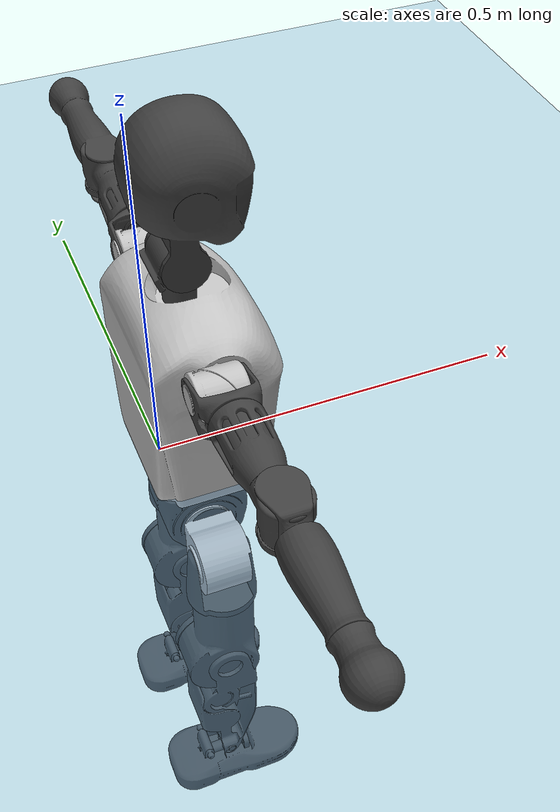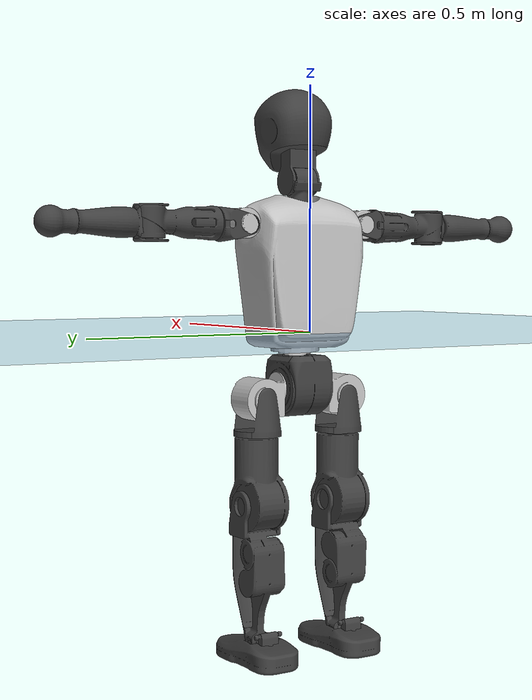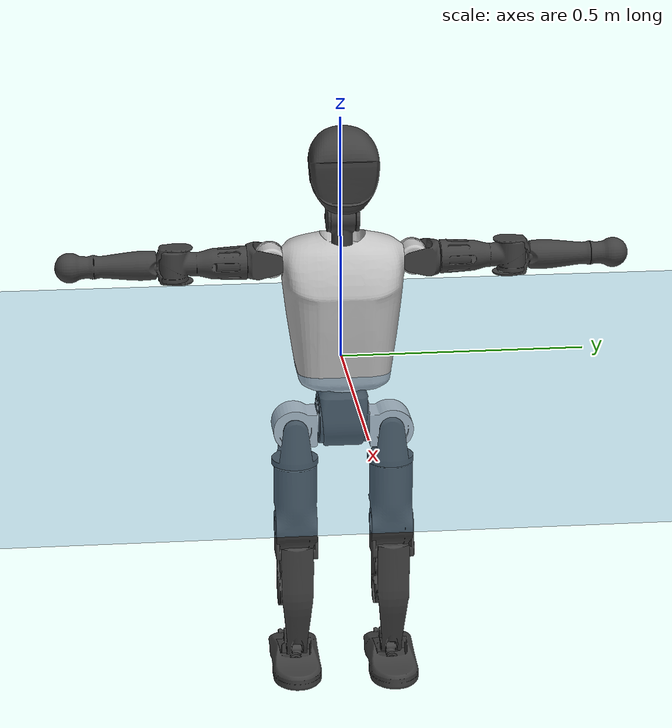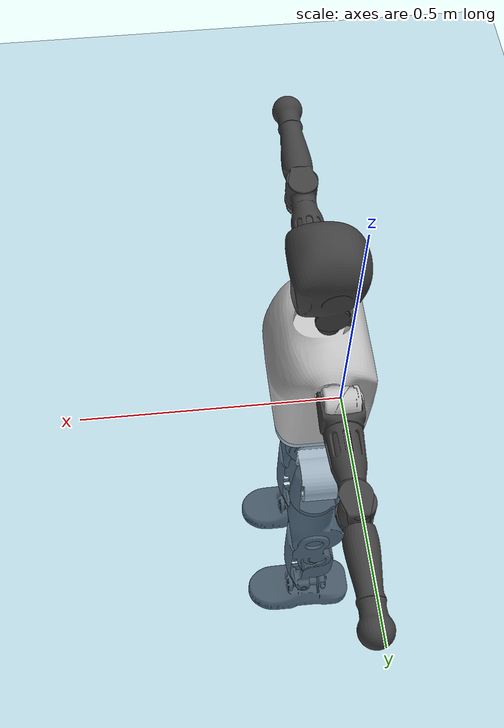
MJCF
<mujoco model="T1">
  <compiler angle="radian" assetdir="assets" balanceinertia="true" inertiafromgeom="false"/>

  <option timestep="0.005" density="1.2" viscosity="2e-05"/>

  <size nkey="1"/>

  <visual>
    <quality shadowsize="8192"/>
    <map shadowclip="0.5"/>
  </visual>

  <default>
    <default class="/">
      <joint armature="0.01" damping="0.01" frictionloss="0.1"/>
      <geom contype="0" conaffinity="0" group="1" solref="-1000 -80"/>
      <site size="0.01 0.005 0.005" group="5"/>
      <general forcelimited="true" biastype="affine" gainprm="25" biasprm="0 -25 -0.6"/>
      <default class="t1">
        <geom rgba="0.25 0.25 0.25 1"/>
        <default class="visual">
          <geom type="mesh" group="2"/>
        </default>
        <default class="collision">
          <geom group="3"/>
        </default>
        <default class="foot">
          <geom size="0.1115 0.05 0.015" type="box" condim="6" group="4" priority="1" solimp="0.015 1 0.015"/>
        </default>
        <default class="reward_collision_sphere">
          <geom group="5" rgba="1 0 0 1"/>
        </default>
      </default>
    </default>
  </default>

  <asset>
    <texture type="skybox" colorspace="auto" name="//unnamed_texture_0" builtin="gradient" rgb1="0.95 0.95 0.95" rgb2="0.95 0.95 0.95" width="100" height="600"/>
    <texture type="2d" colorspace="auto" name="texplane" builtin="checker" rgb1="0.345 0.575 0.748" rgb2="0.345 0.575 0.748" markrgb="1 1 1" width="512" height="512"/>
    <material name="MatPlane" class="/" texture="texplane" texuniform="true" texrepeat="2 2" specular="0.9"/>
    <mesh name="Trunk" class="/" file="Trunk.stl"/>
    <mesh name="H1" class="/" file="H1.stl"/>
    <mesh name="H2" class="/" file="H2.stl"/>
    <mesh name="AL1" class="/" file="AL1.stl"/>
    <mesh name="AL2" class="/" file="AL2.stl"/>
    <mesh name="AL3" class="/" file="AL3.stl"/>
    <mesh name="left_hand_link" class="/" file="left_hand_link.stl"/>
    <mesh name="AR1" class="/" file="AR1.stl"/>
    <mesh name="AR2" class="/" file="AR2.stl"/>
    <mesh name="AR3" class="/" file="AR3.stl"/>
    <mesh name="right_hand_link" class="/" file="right_hand_link.stl"/>
    <mesh name="Waist" class="/" file="Waist.stl"/>
    <mesh name="Hip_Pitch_Left" class="/" file="Hip_Pitch_Left.stl"/>
    <mesh name="Hip_Roll_Left" class="/" file="Hip_Roll_Left.stl"/>
    <mesh name="Hip_Yaw_Left" class="/" file="Hip_Yaw_Left.stl"/>
    <mesh name="Shank_Left" class="/" file="Shank_Left.stl"/>
    <mesh name="Ankle_Cross_Left" class="/" file="Ankle_Cross_Left.stl"/>
    <mesh name="left_foot_link" class="/" file="left_foot_link.stl"/>
    <mesh name="Hip_Pitch_Right" class="/" file="Hip_Pitch_Right.stl"/>
    <mesh name="Hip_Roll_Right" class="/" file="Hip_Roll_Right.stl"/>
    <mesh name="Hip_Yaw_Right" class="/" file="Hip_Yaw_Right.stl"/>
    <mesh name="Shank_Right" class="/" file="Shank_Right.stl"/>
    <mesh name="Ankle_Cross_Right" class="/" file="Ankle_Cross_Right.stl"/>
    <mesh name="right_foot_link" class="/" file="right_foot_link.stl"/>
  </asset>

  <worldbody>
    <geom name="floor" class="/" size="100 100 0.125" type="plane" group="0" material="MatPlane"/>
    <light name="toplight_shadow" class="/" pos="0 0 5" dir="0.0990148 0.0990148 -0.990148" type="directional" ambient="0.04 0.04 0.04" diffuse="0.55 0.55 0.55" specular="0.12 0.12 0.12"/>
    <light name="toplight_fill" class="/" pos="0 0 5" dir="0.0990148 0.0990148 -0.990148" type="directional" castshadow="false" ambient="0.04 0.04 0.04" diffuse="0.3 0.3 0.3" specular="0.08 0.08 0.08"/>
    <body name="trunk" childclass="t1" pos="-0.00078948 -0.00272396 0.0016557" quat="1 0.000612421 -4.15386e-07 -0.000738758">
      <inertial pos="0.0400338 -0.000985871 0.106575" quat="0.999989 -0.000886975 -0.00415166 0.00202741" mass="7.87359" diaginertia="0.0189583 0.0526778 0.0570561"/>
      <joint name="//unnamed_joint_0" type="free" armature="0" damping="0" frictionloss="0"/>
      <geom name="//unnamed_geom_1" class="visual" rgba="0.76 0.76 0.76 1" mesh="Trunk"/>
      <geom name="//unnamed_geom_2" class="collision" size="0.0663559 0.0884745 0.132712" pos="0.0438067 0 0.120439" type="box"/>
      <geom name="//unnamed_geom_3" class="reward_collision_sphere" size="0.101746" pos="0.0438067 0 0.100366"/>
      <geom name="//unnamed_geom_4" class="reward_collision_sphere" size="0.0132712" pos="0.0438067 0.0782398 0"/>
      <geom name="//unnamed_geom_5" class="reward_collision_sphere" size="0.0132712" pos="0.0438067 -0.0782398 0"/>
      <geom name="//unnamed_geom_6" class="reward_collision_sphere" size="0.0132712" pos="0.0438067 0.0984901 0.180658"/>
      <geom name="//unnamed_geom_7" class="reward_collision_sphere" size="0.0132712" pos="0.0438067 -0.0984901 0.180658"/>
      <site name="imu" pos="-0.0108942 -0.0138481 0.000913976" size="0.00884745"/>
      <camera name="track" pos="0 -1.84094 0" quat="0.707107 0.707107 0 0" mode="trackcom"/>
      <camera name="ego_camera" pos="0.0890736 0 0.421535" quat="-0.5 -0.5 0.5 0.5"/>
      <body name="H1" pos="0.0454854 0.000921237 0.244647" quat="1 -0.000380969 0.000563245 -0.000247187">
        <inertial pos="8.46557e-05 -0.00137389 0.0596044" quat="0.762191 -0.00698085 0.0112508 0.647217" mass="0.30552" diaginertia="4.89244e-05 0.000150609 0.000147454"/>
        <joint name="AAHead_yaw" pos="0 0 0" axis="-0.0134106 -0.000439686 0.99991" range="-1.61564 1.54766" armature="0.00965516" damping="0.00788869" frictionloss="0.0774997"/>
        <geom name="//unnamed_geom_8" class="visual" mesh="H1"/>
        <body name="H2" pos="0.0021997 0.000979418 0.062696" quat="1 9.28338e-05 -0.000352885 -0.000197647">
          <inertial pos="0.00485376 -0.00164579 0.0988883" quat="0.988752 0.10764 -0.0702708 -0.0764509" mass="0.422337" diaginertia="0.000407883 0.00119343 0.00168536"/>
          <joint name="Head_pitch" pos="0 0 0" axis="-0.00546948 -0.999904 -0.0127125" range="-1.20011 0.378991" armature="0.00839994" damping="0.0107018" frictionloss="0.0863014"/>
          <geom name="//unnamed_geom_9" class="visual" mesh="H2"/>
          <geom name="//unnamed_geom_10" class="collision" size="0.0707796" pos="0.00730112 0 0.110402"/>
          <geom name="//unnamed_geom_11" class="reward_collision_sphere" size="0.0796271" pos="0.0146022 0 0.100366"/>
        </body>
      </body>
      <body name="AL1" pos="0.0427901 0.0975725 0.218952" quat="1 -5.23167e-05 0.000529512 -0.000119755">
        <inertial pos="-0.00149075 0.0407149 -0.00256988" quat="0.507786 0.484515 -0.51075 0.496521" mass="0.377551" diaginertia="0.000289752 0.000883854 0.00031013"/>
        <joint name="Left_Shoulder_Pitch" pos="0 0 0" axis="0.0145155 0.999895 0.000227497" stiffness="0.00582505" range="-3.30984 1.20689" armature="0.00911163" damping="0.0148776" frictionloss="0.083889"/>
        <geom name="//unnamed_geom_12" class="visual" rgba="0.76 0.76 0.76 1" mesh="AL1"/>
        <body name="AL2" pos="0.00215777 0.0419189 -0.0027256" quat="1 -0.000219105 -0.000869813 -3.1075e-05">
          <inertial pos="0.00219736 0.0325635 -0.000343556" quat="0.487745 0.51229 -0.487414 0.511948" mass="0.108578" diaginertia="8.35713e-05 0.000221679 0.000176697"/>
          <joint name="Left_Shoulder_Roll" pos="0 0 0" axis="-0.999895 -0.00331206 -0.0140814" range="-1.51668 1.74726" armature="0.00851339" damping="0" frictionloss="0.100657"/>
          <geom name="//unnamed_geom_13" class="visual" mesh="AL2"/>
          <body name="AL3" pos="0.00317267 0.0583741 0.00205776" quat="0.999999 6.69998e-05 -0.000398871 -0.00113062">
            <inertial pos="-0.000324766 0.0757583 -0.000568442" quat="0.70805 0.706107 0.00140096 0.00875807" mass="0.712066" diaginertia="0.00263568 0.00858285 0.000601201"/>
            <joint name="Left_Elbow_Pitch" pos="0 0 0" axis="-0.0108928 -0.999906 -0.00828173" range="-2.22742 2.21761" armature="0.0101112" damping="0" frictionloss="0.100091"/>
            <geom name="//unnamed_geom_14" class="visual" mesh="AL3"/>
            <geom name="//unnamed_geom_15" class="collision" size="0.0265424 0.0663559" pos="0 0.0460234 0" quat="0.707105 0.707108 0 0" type="cylinder"/>
            <geom name="//unnamed_geom_16" class="reward_collision_sphere" size="0.0318508"/>
            <body name="left_hand_link" pos="0.00215326 0.135949 -0.00154054" quat="0.999999 -0.000952805 -0.000428725 0.000532407">
              <inertial pos="-0.000102949 0.10171 -0.00222429" quat="0.710502 0.703688 -0.00239879 0.00207727" mass="0.232067" diaginertia="0.00172258 0.00545578 0.00021705"/>
              <joint name="Left_Elbow_Yaw" pos="0 0 0" axis="0.0109585 0.0109888 0.99988" stiffness="0.00864184" range="-2.44107 0.0119553" armature="0.00902295" damping="0.0122811" frictionloss="0.096923"/>
              <geom name="//unnamed_geom_17" class="visual" mesh="left_hand_link"/>
              <geom name="//unnamed_geom_18" class="collision" size="0.0265424 0.0774152" pos="0 0.119661 0" quat="0.707105 0.707108 0 0" type="cylinder"/>
              <geom name="//unnamed_geom_19" class="reward_collision_sphere" size="0.0442373"/>
              <geom name="//unnamed_geom_20" class="reward_collision_sphere" size="0.0309661" pos="0 0.101252 0"/>
              <geom name="//unnamed_geom_21" class="reward_collision_sphere" size="0.0309661" pos="0 0.197901 0"/>
            </body>
          </body>
        </body>
      </body>
      <body name="AR1" pos="0.0417363 -0.0963713 0.220128" quat="1 0.000254817 -0.000125126 0.000365574">
        <inertial pos="-0.000505663 -0.0442572 0.0026413" quat="0.505212 0.495613 -0.503649 0.495445" mass="0.367331" diaginertia="0.000271107 0.000856028 0.000304518"/>
        <joint name="Right_Shoulder_Pitch" pos="0 0 0" axis="0.00186283 -0.999997 0.00171941" range="-1.21912 3.30601" armature="0.00792219" damping="0.00630344" frictionloss="0.0844722"/>
        <geom name="//unnamed_geom_22" class="visual" rgba="0.76 0.76 0.76 1" mesh="AR1"/>
        <body name="AR2" pos="0.00072244 -0.0394087 -0.000966857" quat="1 0.000154507 1.31547e-05 -0.000208433">
          <inertial pos="0.00350233 -0.0348804 -0.00244956" quat="0.508259 0.485145 -0.510577 0.495599" mass="0.112454" diaginertia="8.03155e-05 0.000219564 0.000172767"/>
          <joint name="Right_Shoulder_Roll" pos="0 0 0" axis="-0.999972 0.00707553 -0.00257462" stiffness="0.0110165" range="-1.73334 1.62674" armature="0.00866434" damping="0" frictionloss="0.0870629"/>
          <geom name="//unnamed_geom_23" class="visual" mesh="AR2"/>
          <body name="AR3" pos="0.00216752 -0.0552526 -0.00265104" quat="1 5.1762e-05 -0.000564429 -0.00017742">
            <inertial pos="4.38707e-05 -0.0803302 0.00102689" quat="0.707916 0.706296 0.00091632 0.000365613" mass="0.704727" diaginertia="0.00267543 0.0087452 0.000648067"/>
            <joint name="Right_Elbow_Pitch" pos="0 0 0" axis="-0.00103268 0.999999 -0.00119844" range="-2.26505 2.27697" armature="0.0100332" damping="0.00737107" frictionloss="0.0763134"/>
            <geom name="//unnamed_geom_24" class="visual" mesh="AR3"/>
            <geom name="//unnamed_geom_25" class="collision" size="0.0265424 0.0663559" pos="0 -0.0460234 0" quat="0.707105 0.707108 0 0" type="cylinder"/>
            <geom name="//unnamed_geom_26" class="reward_collision_sphere" size="0.0318508"/>
            <body name="right_hand_link" pos="3.06304e-05 -0.136123 0.00040778" quat="0.999999 0.000758904 0.00024847 -0.000753659">
              <inertial pos="0.000359639 -0.100401 -0.00176172" quat="0.714724 0.699394 -0.00153721 -0.00387364" mass="0.231606" diaginertia="0.00162781 0.00537249 0.000223427"/>
              <joint name="Right_Elbow_Yaw" pos="0 0 0" axis="-0.00207703 -0.00551314 0.999983" range="-0.0553326 2.48838" armature="0.0091677" damping="0.00791022" frictionloss="0.0868161"/>
              <geom name="//unnamed_geom_27" class="visual" mesh="right_hand_link"/>
              <geom name="//unnamed_geom_28" class="collision" size="0.0265424 0.0774152" pos="0 -0.119661 0" quat="0.707105 0.707108 0 0" type="cylinder"/>
              <geom name="//unnamed_geom_29" class="reward_collision_sphere" size="0.0442373"/>
              <geom name="//unnamed_geom_30" class="reward_collision_sphere" size="0.0309661" pos="0 -0.101252 0"/>
              <geom name="//unnamed_geom_31" class="reward_collision_sphere" size="0.0309661" pos="0 -0.197901 0"/>
            </body>
          </body>
        </body>
      </body>
      <body name="Waist" pos="0.0475128 -0.000325245 -0.116774" quat="1 -0.000146865 5.4114e-05 0.000489811">
        <inertial pos="0.000423311 3.06273e-05 0.00907645" quat="0.984421 0.00396599 -0.175755 -0.00314678" mass="1.73928" diaginertia="0.0010755 0.00353136 0.00482696"/>
        <joint name="Waist" pos="0 0 0" axis="-0.0121198 -0.0100122 0.999876" range="-1.56929 1.57893" armature="0.00907413" damping="0.0239839" frictionloss="0.0762191"/>
        <geom name="//unnamed_geom_32" class="visual" mesh="Waist"/>
        <body name="Hip_Pitch_Left" pos="0.00357783 0.0995439 -0.000976566" quat="1 -0.000100977 0.000373388 -2.52001e-05">
          <inertial pos="0.00305207 -0.0057403 -0.0210232" quat="0.975759 0.217626 0.0215725 -0.00822094" mass="0.731251" diaginertia="0.000375316 0.000974796 0.00129155"/>
          <joint name="Left_Hip_Pitch" pos="0 0 0" axis="-0.00370131 0.99997 -0.00678123" range="-1.80406 1.62688" armature="0.00916493" damping="0" frictionloss="0.093172"/>
          <geom name="//unnamed_geom_33" class="visual" rgba="0.76 0.76 0.76 1" mesh="Hip_Pitch_Left"/>
          <body name="Hip_Roll_Left" pos="0.00235178 -0.000778914 -0.0178807" quat="1 0.000127502 5.36003e-05 0.000153823">
            <inertial pos="-0.00120101 0.00273152 -0.0544055" quat="0.709884 -0.00113626 -0.0167436 0.704119" mass="0.259167" diaginertia="0.000363112 0.000943223 0.000511421"/>
            <joint name="Left_Hip_Roll" pos="0 0 0" axis="-0.999999 -0.000288953 -0.00121852" range="-1.58038 0.222958" armature="0.00875952" damping="0.00749701" frictionloss="0.0774609"/>
            <geom name="//unnamed_geom_34" class="visual" mesh="Hip_Roll_Left"/>
            <geom name="//unnamed_geom_35" class="reward_collision_sphere" size="0.048661"/>
            <body name="Hip_Yaw_Left" pos="-0.000457791 0.00182082 -0.080389" quat="1 -0.000192707 2.03878e-05 -0.000193393">
              <inertial pos="-0.00474468 -0.000785201 -0.0887229" quat="0.690487 -0.0439996 -0.0313755 0.721323" mass="1.42335" diaginertia="0.00525658 0.0161993 0.00258033"/>
              <joint name="Left_Hip_Yaw" pos="0 0 0" axis="-0.00151069 -0.0127622 -0.999917" range="-0.978803 0.953832" armature="0.00908413" damping="0.00944763" frictionloss="0.0908067"/>
              <geom name="//unnamed_geom_36" class="visual" mesh="Hip_Yaw_Left"/>
              <geom name="//unnamed_geom_37" class="collision" size="0.0442373 0.0707796" type="cylinder"/>
              <body name="Shank_Left" pos="-0.00639864 0.00214766 -0.137934" quat="1 -0.000160502 -0.000326823 0.00055974">
                <inertial pos="-0.00530148 -0.00235225 -0.125004" quat="0.997392 0.00573528 -0.0261177 0.0670408" mass="1.20185" diaginertia="0.00742792 0.0227931 0.00195446"/>
                <joint name="Left_Knee_Pitch" pos="0 0 0" axis="0.00419939 0.999973 -0.00610288" range="0.0302149 2.34001" armature="0.0088844" damping="0.0196549" frictionloss="0.0978369"/>
                <geom name="//unnamed_geom_38" class="visual" mesh="Shank_Left"/>
                <geom name="//unnamed_geom_39" class="collision" size="0.0442373 0.0663559" pos="0 0 -0.120439" type="cylinder"/>
                <geom name="//unnamed_geom_40" class="reward_collision_sphere" size="0.0575084"/>
                <body name="Ankle_Cross_Left" pos="6.66192e-05 -0.0013772 -0.283644" quat="1 5.0567e-06 0.000117534 -0.000214454">
                  <inertial pos="-0.00239117 0.000291788 -0.00611452" quat="0.440174 0.55442 0.548807 0.444607" mass="0.0476766" diaginertia="6.04737e-06 1.59782e-05 1.13695e-05"/>
                  <joint name="Left_Ankle_Pitch" pos="0 0 0" axis="-0.00788966 0.999894 -0.0122578" range="-0.879702 0.362241" armature="0.00878655" damping="0.00436879" frictionloss="0.0827049"/>
                  <geom name="//unnamed_geom_41" class="visual" mesh="Ankle_Cross_Left"/>
                  <body name="left_foot_link" pos="0.000825243 0.00152751 -0.0119853" quat="0.999999 -4.6732e-05 -5.48701e-05 -0.00128896">
                    <inertial pos="0.00267195 0.000752074 -0.00975761" quat="-0.00388131 0.611287 0.0054064 0.791381" mass="0.485634" diaginertia="0.000569385 0.00160369 0.00218677"/>
                    <joint name="Left_Ankle_Roll" pos="0 0 0" axis="-1 -0.00025952 -0.000304771" range="-0.451794 0.406428" armature="0.0089069" damping="0" frictionloss="0.0904268"/>
                    <geom name="//unnamed_geom_42" class="visual" mesh="left_foot_link"/>
                    <geom name="left_foot" class="foot" size="0.109057 0.04052 0.0122136" pos="0.00730112 0 -0.0150548"/>
                    <geom name="//unnamed_geom_44" class="reward_collision_sphere" size="0.0460068" pos="0.00730112 0 -0.0150548"/>
                    <geom name="//unnamed_geom_45" class="reward_collision_sphere" size="0.0265424" pos="0.0693606 -0.0211708 -0.0150548"/>
                    <geom name="//unnamed_geom_46" class="reward_collision_sphere" size="0.0265424" pos="-0.0511078 -0.0211708 -0.0150548"/>
                    <site name="left_foot" class="foot" pos="0.00730112 0 -0.0150548" size="0.00884745"/>
                  </body>
                </body>
              </body>
            </body>
          </body>
        </body>
        <body name="Hip_Pitch_Right" pos="-0.00336897 -0.098669 0.000552562" quat="0.999999 0.00102562 0.000577771 -0.000962969">
          <inertial pos="-0.00154028 0.00726639 -0.0151915" quat="0.973573 -0.227806 0.0157245 -0.00366346" mass="0.726464" diaginertia="0.000380797 0.000987948 0.00132605"/>
          <joint name="Right_Hip_Pitch" pos="0 0 0" axis="0.000734961 -0.999999 -0.000975393" range="-1.56975 1.8151" armature="0.00907287" damping="0" frictionloss="0.0996984"/>
          <geom name="//unnamed_geom_47" class="visual" rgba="0.76 0.76 0.76 1" mesh="Hip_Pitch_Right"/>
          <body name="Hip_Roll_Right" pos="0.00244663 0.000982712 -0.0211221" quat="1 0.000186834 -2.9719e-05 0.000116992">
            <inertial pos="-0.00174344 -0.00193254 -0.0565312" quat="0.712244 -0.00564638 -0.00828423 0.70186" mass="0.275282" diaginertia="0.000357362 0.00100015 0.000518108"/>
            <joint name="Right_Hip_Roll" pos="0 0 0" axis="-0.999979 0.0039207 0.00518254" range="-0.242015 1.59214" armature="0.009625" damping="0.00398553" frictionloss="0.0814276"/>
            <geom name="//unnamed_geom_48" class="visual" mesh="Hip_Roll_Right"/>
            <geom name="//unnamed_geom_49" class="reward_collision_sphere" size="0.048661"/>
            <body name="Hip_Yaw_Right" pos="-0.00145175 0.000774811 -0.0822392" quat="1 1.70661e-05 -1.84219e-05 6.34493e-05">
              <inertial pos="-0.00498262 -0.00321911 -0.0870918" quat="0.711359 -0.0292962 -0.0334534 0.701421" mass="1.54982" diaginertia="0.00532524 0.0178019 0.00263412"/>
              <joint name="Right_Hip_Yaw" pos="0 0 0" axis="0.000933478 0.00247842 -0.999996" stiffness="0.0102659" range="-0.976778 1.00185" armature="0.00771824" damping="0" frictionloss="0.0929325"/>
              <geom name="//unnamed_geom_50" class="visual" mesh="Hip_Yaw_Right"/>
              <geom name="//unnamed_geom_51" class="collision" size="0.0442373 0.0707796" type="cylinder"/>
              <body name="Shank_Right" pos="-0.00755332 0.000312535 -0.135677" quat="1 -8.95122e-05 -5.04796e-07 -0.000143355">
                <inertial pos="-0.00176163 0.00184098 -0.122957" quat="0.998961 -0.0100244 -0.0322625 -0.0306033" mass="1.2799" diaginertia="0.00772558 0.0236939 0.00201787"/>
                <joint name="Right_Knee_Pitch" pos="0 0 0" axis="-0.000273885 -0.999983 -0.00581237" range="-2.34326 -0.00419818" armature="0.00864086" damping="0.00387392" frictionloss="0.0943155"/>
                <geom name="//unnamed_geom_52" class="visual" mesh="Shank_Right"/>
                <geom name="//unnamed_geom_53" class="collision" size="0.0442373 0.0663559" pos="0 0 -0.120439" type="cylinder"/>
                <geom name="//unnamed_geom_54" class="reward_collision_sphere" size="0.0575084"/>
                <body name="Ankle_Cross_Right" pos="0.00245257 -0.000356885 -0.281257" quat="1 5.86741e-05 0.000116375 -0.000138903">
                  <inertial pos="-0.00262793 0.00207148 -0.00805512" quat="0.44235 0.556985 0.54635 0.442261" mass="0.0488274" diaginertia="6.20464e-06 1.70274e-05 1.12623e-05"/>
                  <joint name="Right_Ankle_Pitch" pos="0 0 0" axis="-0.00110301 -0.999921 -0.0125211" range="-0.354986 0.869797" armature="0.00857229" damping="0.0030571" frictionloss="0.0878504"/>
                  <geom name="//unnamed_geom_55" class="visual" mesh="Ankle_Cross_Right"/>
                  <body name="right_foot_link" pos="0.000391416 -0.00388489 -0.0093116" quat="1 5.3806e-06 6.58056e-05 1.7633e-07">
                    <inertial pos="0.00250112 -0.00047166 -0.00688436" quat="-0.0110439 0.61498 0.000712985 0.788465" mass="0.471971" diaginertia="0.000577049 0.00158659 0.00219338"/>
                    <joint name="Right_Ankle_Roll" pos="0 0 0" axis="-0.99989 0.000383638 0.0147937" stiffness="0.000925765" range="-0.434693 0.429751" armature="0.00905969" damping="0.00704081" frictionloss="0.0765831"/>
                    <geom name="//unnamed_geom_56" class="visual" mesh="right_foot_link"/>
                    <geom name="right_foot" class="foot" size="0.102977 0.0401799 0.0122417" pos="0.00730112 0 -0.0150548"/>
                    <geom name="//unnamed_geom_58" class="reward_collision_sphere" size="0.0353898"/>
                    <geom name="//unnamed_geom_59" class="reward_collision_sphere" size="0.0265424" pos="0.00730112 0 -0.0150548"/>
                    <geom name="//unnamed_geom_60" class="reward_collision_sphere" size="0.0265424" pos="0.0693606 0.0211708 -0.0150548"/>
                    <geom name="//unnamed_geom_61" class="reward_collision_sphere" size="0.0265424" pos="-0.0511078 0.0211708 -0.0150548"/>
                    <site name="right_foot" class="foot" pos="0.00730112 0 -0.0150548" size="0.00884745"/>
                  </body>
                </body>
              </body>
            </body>
          </body>
        </body>
      </body>
    </body>
  </worldbody>

  <contact>
    <pair class="/" geom1="floor" geom2="left_foot" name="//unnamed_contact_0"/>
    <pair class="/" geom1="floor" geom2="right_foot" name="//unnamed_contact_1"/>
  </contact>

  <actuator>
    <general name="AAHead_yaw" class="/" joint="AAHead_yaw" forcerange="-5.54807 5.54807" gainprm="22.3124" biasprm="0 -22.3124 -0.502517"/>
    <general name="Head_pitch" class="/" joint="Head_pitch" forcerange="-6.29818 6.29818" gainprm="22.3124" biasprm="0 -22.3124 -0.502517"/>
    <general name="Left_Shoulder_Pitch" class="/" joint="Left_Shoulder_Pitch" forcerange="-16.1263 16.1263" gainprm="22.3124" biasprm="0 -22.3124 -0.502517"/>
    <general name="Left_Shoulder_Roll" class="/" joint="Left_Shoulder_Roll" forcerange="-16.0992 16.0992" gainprm="22.3124" biasprm="0 -22.3124 -0.502517"/>
    <general name="Left_Elbow_Pitch" class="/" joint="Left_Elbow_Pitch" forcerange="-17.5833 17.5833" gainprm="22.3124" biasprm="0 -22.3124 -0.502517"/>
    <general name="Left_Elbow_Yaw" class="/" joint="Left_Elbow_Yaw" forcerange="-17.457 17.457" gainprm="22.3124" biasprm="0 -22.3124 -0.502517"/>
    <general name="Right_Shoulder_Pitch" class="/" joint="Right_Shoulder_Pitch" forcerange="-15.9298 15.9298" gainprm="22.3124" biasprm="0 -22.3124 -0.502517"/>
    <general name="Right_Shoulder_Roll" class="/" joint="Right_Shoulder_Roll" forcerange="-17.5497 17.5497" gainprm="22.3124" biasprm="0 -22.3124 -0.502517"/>
    <general name="Right_Elbow_Pitch" class="/" joint="Right_Elbow_Pitch" forcerange="-17.2321 17.2321" gainprm="22.3124" biasprm="0 -22.3124 -0.502517"/>
    <general name="Right_Elbow_Yaw" class="/" joint="Right_Elbow_Yaw" forcerange="-14.2756 14.2756" gainprm="22.3124" biasprm="0 -22.3124 -0.502517"/>
    <general name="Waist" class="/" joint="Waist" forcerange="-26.676 26.676" gainprm="22.3124" biasprm="0 -22.3124 -0.502517"/>
    <general name="Left_Hip_Pitch" class="/" joint="Left_Hip_Pitch" forcerange="-42.7074 42.7074" gainprm="22.3124" biasprm="0 -22.3124 -0.502517"/>
    <general name="Left_Hip_Roll" class="/" joint="Left_Hip_Roll" forcerange="-27.5742 27.5742" gainprm="22.3124" biasprm="0 -22.3124 -0.502517"/>
    <general name="Left_Hip_Yaw" class="/" joint="Left_Hip_Yaw" forcerange="-26.5821 26.5821" gainprm="22.3124" biasprm="0 -22.3124 -0.502517"/>
    <general name="Left_Knee_Pitch" class="/" joint="Left_Knee_Pitch" forcerange="-52.6395 52.6395" gainprm="22.3124" biasprm="0 -22.3124 -0.502517"/>
    <general name="Left_Ankle_Pitch" class="/" joint="Left_Ankle_Pitch" forcerange="-17.3791 17.3791" gainprm="22.3124" biasprm="0 -22.3124 -0.502517"/>
    <general name="Left_Ankle_Roll" class="/" joint="Left_Ankle_Roll" forcerange="-13.2189 13.2189" gainprm="22.3124" biasprm="0 -22.3124 -0.502517"/>
    <general name="Right_Hip_Pitch" class="/" joint="Right_Hip_Pitch" forcerange="-40.1979 40.1979" gainprm="22.3124" biasprm="0 -22.3124 -0.502517"/>
    <general name="Right_Hip_Roll" class="/" joint="Right_Hip_Roll" forcerange="-26.293 26.293" gainprm="22.3124" biasprm="0 -22.3124 -0.502517"/>
    <general name="Right_Hip_Yaw" class="/" joint="Right_Hip_Yaw" forcerange="-26.6613 26.6613" gainprm="22.3124" biasprm="0 -22.3124 -0.502517"/>
    <general name="Right_Knee_Pitch" class="/" joint="Right_Knee_Pitch" forcerange="-50.0162 50.0162" gainprm="22.3124" biasprm="0 -22.3124 -0.502517"/>
    <general name="Right_Ankle_Pitch" class="/" joint="Right_Ankle_Pitch" forcerange="-15.9511 15.9511" gainprm="22.3124" biasprm="0 -22.3124 -0.502517"/>
    <general name="Right_Ankle_Roll" class="/" joint="Right_Ankle_Roll" forcerange="-14.2812 14.2812" gainprm="22.3124" biasprm="0 -22.3124 -0.502517"/>
  </actuator>

  <sensor>
    <gyro site="imu" name="imu_angular_velocity"/>
    <velocimeter site="imu" name="imu_linear_velocity"/>
    <framelinvel objtype="site" objname="left_foot" name="left_foot_global_linear_velocity"/>
    <framelinvel objtype="site" objname="right_foot" name="right_foot_global_linear_velocity"/>
  </sensor>

  <keyframe>
    <key name="home" qpos="0 0 0.6385 1 0 0 0 0 0 0 1.4 0 -0.4 0 -1.4 0 0.4 0 -0.4 0 0 0.8 -0.4 0 0.4 0 0 -0.8 0.4 0"/>
  </keyframe>
</mujoco>
